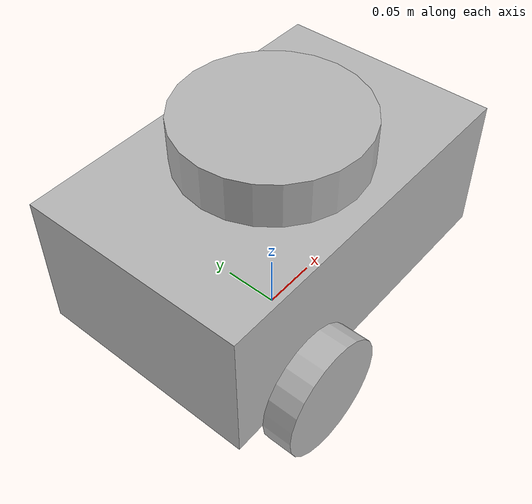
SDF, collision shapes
<sdf version='1.7'>
  <model name='thien_robot'>
    <link name='base_footprint'>
      <inertial>
        <pose>0.05104 0 0.067921 0 -0 0</pose>
        <mass>10.1</mass>
        <inertia>
          <ixx>0.063013</ixx>
          <ixy>0</ixy>
          <ixz>0.0208082</ixz>
          <iyy>0.0982088</iyy>
          <iyz>0</iyz>
          <izz>0.0484874</izz>
        </inertia>
      </inertial>
      <collision name='base_footprint_fixed_joint_lump__base_link_collision'>
        <pose>0 0 0.11 0 -0 0</pose>
        <geometry>
          <box>
            <size>0.3 0.19 0.12</size>
          </box>
        </geometry>
      </collision>
      <collision name='base_footprint_fixed_joint_lump__camera_link_collision_1'>
        <pose>0.155 0 0.11 0 -0 0</pose>
        <geometry>
          <box>
            <size>0.01 0.1 0.05</size>
          </box>
        </geometry>
      </collision>
      <collision name='base_footprint_fixed_joint_lump__caster_wheel_link_collision_2'>
        <pose>0.1 0 0.025 0 -0 0</pose>
        <geometry>
          <sphere>
            <radius>0.025</radius>
          </sphere>
        </geometry>
      </collision>
      <collision name='base_footprint_fixed_joint_lump__laser_link_collision_3'>
        <pose>0 0 0.18925 0 -0 0</pose>
        <geometry>
          <cylinder>
            <length>0.039</length>
            <radius>0.077</radius>
          </cylinder>
        </geometry>
      </collision>
      <visual name='base_footprint_fixed_joint_lump__base_link_visual'>
        <pose>0 0 0.11 0 -0 0</pose>
        <geometry>
          <box>
            <size>0.3 0.19 0.12</size>
          </box>
        </geometry>
      </visual>
      <visual name='base_footprint_fixed_joint_lump__camera_link_visual_1'>
        <pose>0.155 0 0.11 0 -0 0</pose>
        <geometry>
          <box>
            <size>0.01 0.1 0.05</size>
          </box>
        </geometry>
      </visual>
      <visual name='base_footprint_fixed_joint_lump__caster_wheel_link_visual_2'>
        <pose>0.1 0 0.025 0 -0 0</pose>
        <geometry>
          <sphere>
            <radius>0.025</radius>
          </sphere>
        </geometry>
      </visual>
      <visual name='base_footprint_fixed_joint_lump__laser_link_visual_3'>
        <pose>0 0 0.18925 0 -0 0</pose>
        <geometry>
          <mesh>
            <scale>0.001 0.001 0.001</scale>
            <uri>model://robot_description/mesh/sensors/lds.stl</uri>
          </mesh>
        </geometry>
      </visual>
    </link>
    <joint name='base_left_wheel_joint' type='revolute'>
      <pose relative_to='base_footprint'>-0.075 0.1075 0.05 0 -0 0</pose>
      <parent>base_footprint</parent>
      <child>left_wheel_link</child>
      <axis>
        <xyz>0 1 0</xyz>
        <limit>
          <lower>-1e+16</lower>
          <upper>1e+16</upper>
        </limit>
        <dynamics>
          <spring_reference>0</spring_reference>
          <spring_stiffness>0</spring_stiffness>
        </dynamics>
      </axis>
    </joint>
    <link name='left_wheel_link'>
      <pose relative_to='base_left_wheel_joint'>0 0 0 0 -0 0</pose>
      <inertial>
        <pose>0 0 0 1.5708 -0 0</pose>
        <mass>1</mass>
        <inertia>
          <ixx>0.000677083</ixx>
          <ixy>0</ixy>
          <ixz>0</ixz>
          <iyy>0.000677083</iyy>
          <iyz>0</iyz>
          <izz>0.00125</izz>
        </inertia>
      </inertial>
      <collision name='left_wheel_link_collision'>
        <pose>0 0 0 1.5708 -0 0</pose>
        <geometry>
          <cylinder>
            <length>0.025</length>
            <radius>0.05</radius>
          </cylinder>
        </geometry>
      </collision>
      <visual name='left_wheel_link_visual'>
        <pose>0 0 0 1.5708 -0 0</pose>
        <geometry>
          <cylinder>
            <length>0.025</length>
            <radius>0.05</radius>
          </cylinder>
        </geometry>
      </visual>
    </link>
    <joint name='base_right_wheel_joint' type='revolute'>
      <pose relative_to='base_footprint'>-0.075 -0.1075 0.05 0 -0 0</pose>
      <parent>base_footprint</parent>
      <child>right_wheel_link</child>
      <axis>
        <xyz>0 1 0</xyz>
        <limit>
          <lower>-1e+16</lower>
          <upper>1e+16</upper>
        </limit>
        <dynamics>
          <spring_reference>0</spring_reference>
          <spring_stiffness>0</spring_stiffness>
        </dynamics>
      </axis>
    </joint>
    <link name='right_wheel_link'>
      <pose relative_to='base_right_wheel_joint'>0 0 0 0 -0 0</pose>
      <inertial>
        <pose>0 0 0 1.5708 -0 0</pose>
        <mass>1</mass>
        <inertia>
          <ixx>0.000677083</ixx>
          <ixy>0</ixy>
          <ixz>0</ixz>
          <iyy>0.000677083</iyy>
          <iyz>0</iyz>
          <izz>0.00125</izz>
        </inertia>
      </inertial>
      <collision name='right_wheel_link_collision'>
        <pose>0 0 0 1.5708 -0 0</pose>
        <geometry>
          <cylinder>
            <length>0.025</length>
            <radius>0.05</radius>
          </cylinder>
        </geometry>
      </collision>
      <visual name='right_wheel_link_visual'>
        <pose>0 0 0 1.5708 -0 0</pose>
        <geometry>
          <cylinder>
            <length>0.025</length>
            <radius>0.05</radius>
          </cylinder>
        </geometry>
      </visual>
    </link>
    <frame name='base_camera_joint' attached_to='base_link'>
      <pose>0.155 0 0.06 0 -0 0</pose>
    </frame>
    <frame name='camera_link' attached_to='base_camera_joint'/>
    <frame name='base_caster_wheel_joint' attached_to='base_link'>
      <pose>0.1 0 -0.025 0 -0 0</pose>
    </frame>
    <frame name='caster_wheel_link' attached_to='base_caster_wheel_joint'/>
    <frame name='laser_joint' attached_to='base_link'>
      <pose>0 0 0.12 0 -0 0</pose>
    </frame>
    <frame name='laser_link' attached_to='laser_joint'/>
    <frame name='base_joint' attached_to='base_footprint'>
      <pose>0 0 0.05 0 -0 0</pose>
    </frame>
    <frame name='base_link' attached_to='base_joint'/>
  </model>
</sdf>
